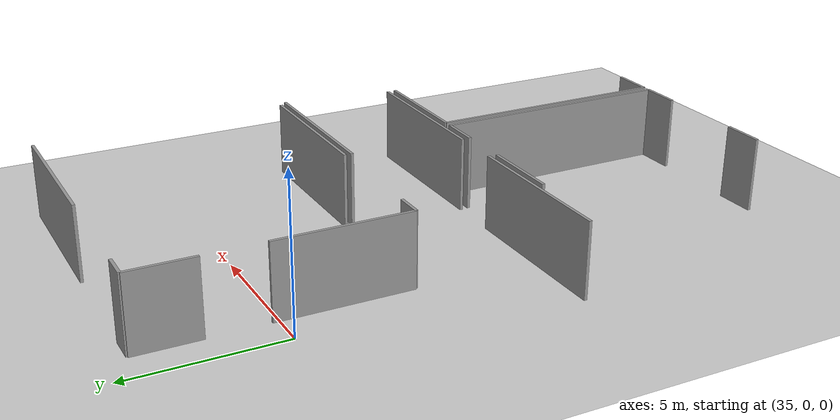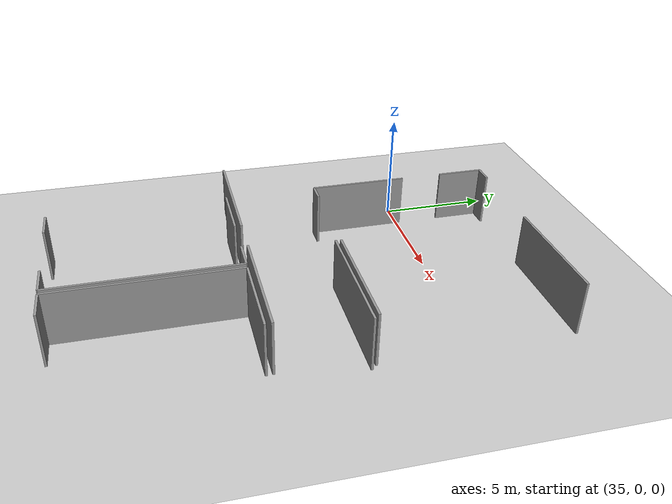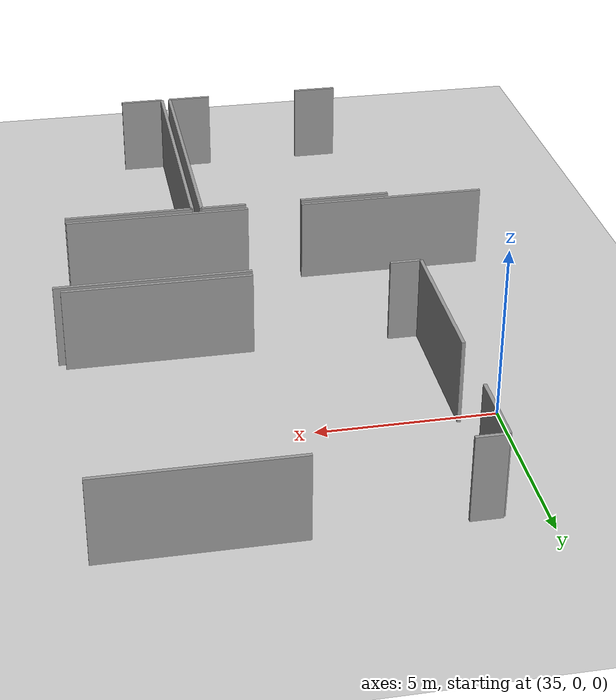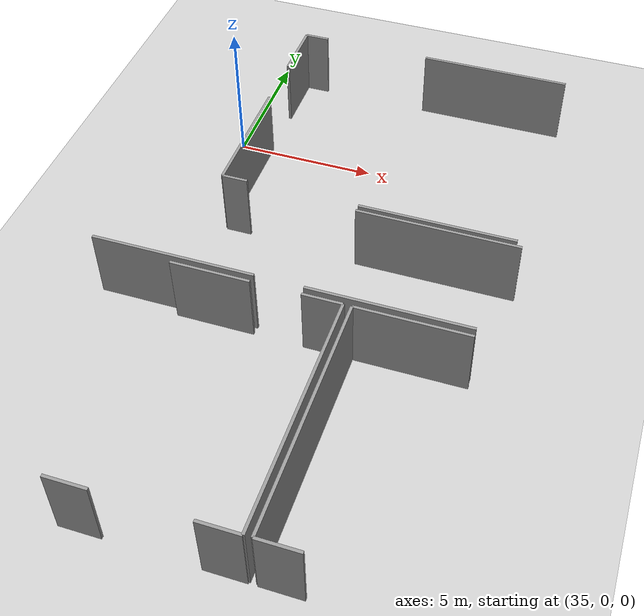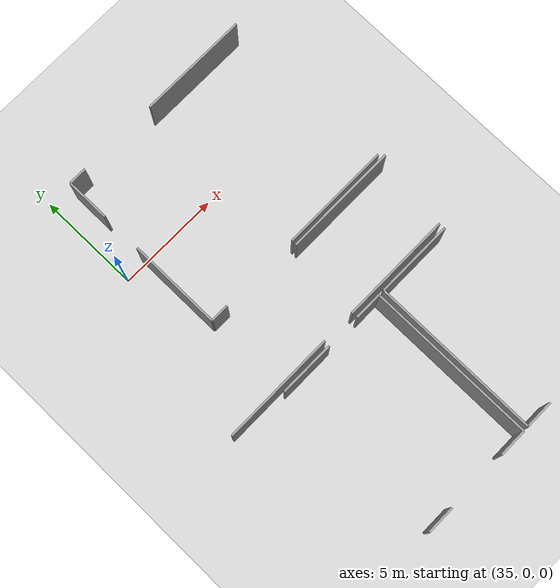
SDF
<sdf version="1.6">
 <world name="default">
  <model name="ground_plane">
   <static>1</static>
   <link name="link">
    <collision name="collision">
     <geometry><plane><normal>0 0 1</normal><size>100 100</size></plane></geometry>
     <surface><friction><ode><mu>100</mu><mu2>50</mu2></ode></friction></surface>
    </collision>
    <visual name="visual">
     <cast_shadows>0</cast_shadows>
     <geometry><plane><normal>0 0 1</normal><size>100 100</size></plane></geometry>
     <material>
      <script><uri>file://media/materials/scripts/gazebo.material</uri><name>Gazebo/Grey</name></script>
     </material>
    </visual>
   </link>
  </model>
  <model name="50041171">
   <static>1</static>
   <link name="Wall_88">
    <collision name="Wall_88_Collision">
     <geometry><box><size>5.42060464496 0.1 2.5</size></box></geometry>
     <pose>2.71030232248 0 1.25 0 0 0</pose>
    </collision>
    <visual name="Wall_88_Visual">
     <pose>2.71030232248 0 1.25 0 0 0</pose>
     <geometry><box><size>5.42060464496 0.1 2.5</size></box></geometry>
     <material>
      <script><uri>file://media/materials/scripts/gazebo.material</uri><name>Gazebo/Grey</name></script>
      <ambient>1 1 1 1</ambient>
     </material>
    </visual>
    <pose>111.516817204 -25.0291024266 0 0 0 3.14159265359</pose>
   </link>
   <link name="Wall_89">
    <collision name="Wall_89_Collision">
     <geometry><box><size>5.54755088958 0.1 2.5</size></box></geometry>
     <pose>2.77377544479 0 1.25 0 0 0</pose>
    </collision>
    <visual name="Wall_89_Visual">
     <pose>2.77377544479 0 1.25 0 0 0</pose>
     <geometry><box><size>5.54755088958 0.1 2.5</size></box></geometry>
     <material>
      <script><uri>file://media/materials/scripts/gazebo.material</uri><name>Gazebo/Grey</name></script>
      <ambient>1 1 1 1</ambient>
     </material>
    </visual>
    <pose>104.458606003 -25.0291024266 0 0 0 3.14159265359</pose>
   </link>
   <link name="Wall_122">
    <collision name="Wall_122_Collision">
     <geometry><box><size>5.54755088958 0.1 2.5</size></box></geometry>
     <pose>2.77377544479 0 1.25 0 0 0</pose>
    </collision>
    <visual name="Wall_122_Visual">
     <pose>2.77377544479 0 1.25 0 0 0</pose>
     <geometry><box><size>5.54755088958 0.1 2.5</size></box></geometry>
     <material>
      <script><uri>file://media/materials/scripts/gazebo.material</uri><name>Gazebo/Grey</name></script>
      <ambient>1 1 1 1</ambient>
     </material>
    </visual>
    <pose>106.565913664 -21.2850768342 0 0 0 0.0</pose>
   </link>
   <link name="Wall_288">
    <collision name="Wall_288_Collision">
     <geometry><box><size>5.33123448876 0.1 2.5</size></box></geometry>
     <pose>2.66561724438 0 1.25 0 0 0</pose>
    </collision>
    <visual name="Wall_288_Visual">
     <pose>2.66561724438 0 1.25 0 0 0</pose>
     <geometry><box><size>5.33123448876 0.1 2.5</size></box></geometry>
     <material>
      <script><uri>file://media/materials/scripts/gazebo.material</uri><name>Gazebo/Grey</name></script>
      <ambient>1 1 1 1</ambient>
     </material>
    </visual>
    <pose>111.910350562 -21.0441328619 0 0 0 3.14159265359</pose>
   </link>
   <link name="Wall_289">
    <collision name="Wall_289_Collision">
     <geometry><box><size>0.892685992117 0.1 2.5</size></box></geometry>
     <pose>0.446342996058 0 1.25 0 0 0</pose>
    </collision>
    <visual name="Wall_289_Visual">
     <pose>0.446342996058 0 1.25 0 0 0</pose>
     <geometry><box><size>0.892685992117 0.1 2.5</size></box></geometry>
     <material>
      <script><uri>file://media/materials/scripts/gazebo.material</uri><name>Gazebo/Grey</name></script>
      <ambient>1 1 1 1</ambient>
     </material>
    </visual>
    <pose>102.660412448 -21.0441328619 0 0 0 3.14159265359</pose>
   </link>
   <link name="Wall_290">
    <collision name="Wall_290_Collision">
     <geometry><box><size>4.48920004824 0.1 2.5</size></box></geometry>
     <pose>2.24460002412 0 1.25 0 0 0</pose>
    </collision>
    <visual name="Wall_290_Visual">
     <pose>2.24460002412 0 1.25 0 0 0</pose>
     <geometry><box><size>4.48920004824 0.1 2.5</size></box></geometry>
     <material>
      <script><uri>file://media/materials/scripts/gazebo.material</uri><name>Gazebo/Grey</name></script>
      <ambient>1 1 1 1</ambient>
     </material>
    </visual>
    <pose>101.767726456 -21.0441328619 0 0 0 1.57079632679</pose>
   </link>
   <link name="Wall_291">
    <collision name="Wall_291_Collision">
     <geometry><box><size>2.14120230788 0.1 2.5</size></box></geometry>
     <pose>1.07060115394 0 1.25 0 0 0</pose>
    </collision>
    <visual name="Wall_291_Visual">
     <pose>1.07060115394 0 1.25 0 0 0</pose>
     <geometry><box><size>2.14120230788 0.1 2.5</size></box></geometry>
     <material>
      <script><uri>file://media/materials/scripts/gazebo.material</uri><name>Gazebo/Grey</name></script>
      <ambient>1 1 1 1</ambient>
     </material>
    </visual>
    <pose>101.767726456 -14.6003414854 0 0 0 1.57079632679</pose>
   </link>
   <link name="Wall_292">
    <collision name="Wall_292_Collision">
     <geometry><box><size>0.868312313151 0.1 2.5</size></box></geometry>
     <pose>0.434156156575 0 1.25 0 0 0</pose>
    </collision>
    <visual name="Wall_292_Visual">
     <pose>0.434156156575 0 1.25 0 0 0</pose>
     <geometry><box><size>0.868312313151 0.1 2.5</size></box></geometry>
     <material>
      <script><uri>file://media/materials/scripts/gazebo.material</uri><name>Gazebo/Grey</name></script>
      <ambient>1 1 1 1</ambient>
     </material>
    </visual>
    <pose>101.767726456 -12.4591391775 0 0 0 0.0</pose>
   </link>
   <link name="Wall_293">
    <collision name="Wall_293_Collision">
     <geometry><box><size>5.34545246815 0.1 2.5</size></box></geometry>
     <pose>2.67272623408 0 1.25 0 0 0</pose>
    </collision>
    <visual name="Wall_293_Visual">
     <pose>2.67272623408 0 1.25 0 0 0</pose>
     <geometry><box><size>5.34545246815 0.1 2.5</size></box></geometry>
     <material>
      <script><uri>file://media/materials/scripts/gazebo.material</uri><name>Gazebo/Grey</name></script>
      <ambient>1 1 1 1</ambient>
     </material>
    </visual>
    <pose>106.552203469 -12.4591391775 0 0 0 0.0</pose>
   </link>
   <link name="Wall_398">
    <collision name="Wall_398_Collision">
     <geometry><box><size>1.3502002577 0.1 2.5</size></box></geometry>
     <pose>0.67510012885 0 1.25 0 0 0</pose>
    </collision>
    <visual name="Wall_398_Visual">
     <pose>0.67510012885 0 1.25 0 0 0</pose>
     <geometry><box><size>1.3502002577 0.1 2.5</size></box></geometry>
     <material>
      <script><uri>file://media/materials/scripts/gazebo.material</uri><name>Gazebo/Grey</name></script>
      <ambient>1 1 1 1</ambient>
     </material>
    </visual>
    <pose>107.47332542 -33.5400864504 0 0 0 3.14159265359</pose>
   </link>
   <link name="Wall_399">
    <collision name="Wall_399_Collision">
     <geometry><box><size>1.36962303313 0.1 2.5</size></box></geometry>
     <pose>0.684811516563 0 1.25 0 0 0</pose>
    </collision>
    <visual name="Wall_399_Visual">
     <pose>0.684811516563 0 1.25 0 0 0</pose>
     <geometry><box><size>1.36962303313 0.1 2.5</size></box></geometry>
     <material>
      <script><uri>file://media/materials/scripts/gazebo.material</uri><name>Gazebo/Grey</name></script>
      <ambient>1 1 1 1</ambient>
     </material>
    </visual>
    <pose>103.112468025 -33.5400864504 0 0 0 3.14159265359</pose>
   </link>
   <link name="Wall_401">
    <collision name="Wall_401_Collision">
     <geometry><box><size>2.68732505221 0.1 2.5</size></box></geometry>
     <pose>1.3436625261 0 1.25 0 0 0</pose>
    </collision>
    <visual name="Wall_401_Visual">
     <pose>1.3436625261 0 1.25 0 0 0</pose>
     <geometry><box><size>2.68732505221 0.1 2.5</size></box></geometry>
     <material>
      <script><uri>file://media/materials/scripts/gazebo.material</uri><name>Gazebo/Grey</name></script>
      <ambient>1 1 1 1</ambient>
     </material>
    </visual>
    <pose>101.742844992 -25.3123194983 0 0 0 0.0</pose>
   </link>
   <link name="Wall_402">
    <collision name="Wall_402_Collision">
     <geometry><box><size>1.34385294547 0.1 2.5</size></box></geometry>
     <pose>0.671926472735 0 1.25 0 0 0</pose>
    </collision>
    <visual name="Wall_402_Visual">
     <pose>0.671926472735 0 1.25 0 0 0</pose>
     <geometry><box><size>1.34385294547 0.1 2.5</size></box></geometry>
     <material>
      <script><uri>file://media/materials/scripts/gazebo.material</uri><name>Gazebo/Grey</name></script>
      <ambient>1 1 1 1</ambient>
     </material>
    </visual>
    <pose>106.116016173 -25.3123194983 0 0 0 0.0</pose>
   </link>
   <link name="Wall_403">
    <collision name="Wall_403_Collision">
     <geometry><box><size>8.2277779558 0.1 2.5</size></box></geometry>
     <pose>4.1138889779 0 1.25 0 0 0</pose>
    </collision>
    <visual name="Wall_403_Visual">
     <pose>4.1138889779 0 1.25 0 0 0</pose>
     <geometry><box><size>8.2277779558 0.1 2.5</size></box></geometry>
     <material>
      <script><uri>file://media/materials/scripts/gazebo.material</uri><name>Gazebo/Grey</name></script>
      <ambient>1 1 1 1</ambient>
     </material>
    </visual>
    <pose>107.459869118 -25.3123194983 0 0 0 -1.56916085389</pose>
   </link>
   <link name="Wall_405">
    <collision name="Wall_405_Collision">
     <geometry><box><size>1.36962303313 0.1 2.5</size></box></geometry>
     <pose>0.684811516563 0 1.25 0 0 0</pose>
    </collision>
    <visual name="Wall_405_Visual">
     <pose>0.684811516563 0 1.25 0 0 0</pose>
     <geometry><box><size>1.36962303313 0.1 2.5</size></box></geometry>
     <material>
      <script><uri>file://media/materials/scripts/gazebo.material</uri><name>Gazebo/Grey</name></script>
      <ambient>1 1 1 1</ambient>
     </material>
    </visual>
    <pose>109.109027782 -33.5314541058 0 0 0 3.14159265359</pose>
   </link>
   <link name="Wall_406">
    <collision name="Wall_406_Collision">
     <geometry><box><size>8.20986753159 0.1 2.5</size></box></geometry>
     <pose>4.1049337658 0 1.25 0 0 0</pose>
    </collision>
    <visual name="Wall_406_Visual">
     <pose>4.1049337658 0 1.25 0 0 0</pose>
     <geometry><box><size>8.20986753159 0.1 2.5</size></box></geometry>
     <material>
      <script><uri>file://media/materials/scripts/gazebo.material</uri><name>Gazebo/Grey</name></script>
      <ambient>1 1 1 1</ambient>
     </material>
    </visual>
    <pose>107.739404749 -33.5314541058 0 0 0 1.57079632679</pose>
   </link>
   <link name="Wall_407">
    <collision name="Wall_407_Collision">
     <geometry><box><size>3.79899331628 0.1 2.5</size></box></geometry>
     <pose>1.89949665814 0 1.25 0 0 0</pose>
    </collision>
    <visual name="Wall_407_Visual">
     <pose>1.89949665814 0 1.25 0 0 0</pose>
     <geometry><box><size>3.79899331628 0.1 2.5</size></box></geometry>
     <material>
      <script><uri>file://media/materials/scripts/gazebo.material</uri><name>Gazebo/Grey</name></script>
      <ambient>1 1 1 1</ambient>
     </material>
    </visual>
    <pose>107.739404749 -25.3215865742 0 0 0 0.0</pose>
   </link>
   <pose>-65.65 16.7602709033 0 0 0 0</pose>
  </model>
 </world>
</sdf>
